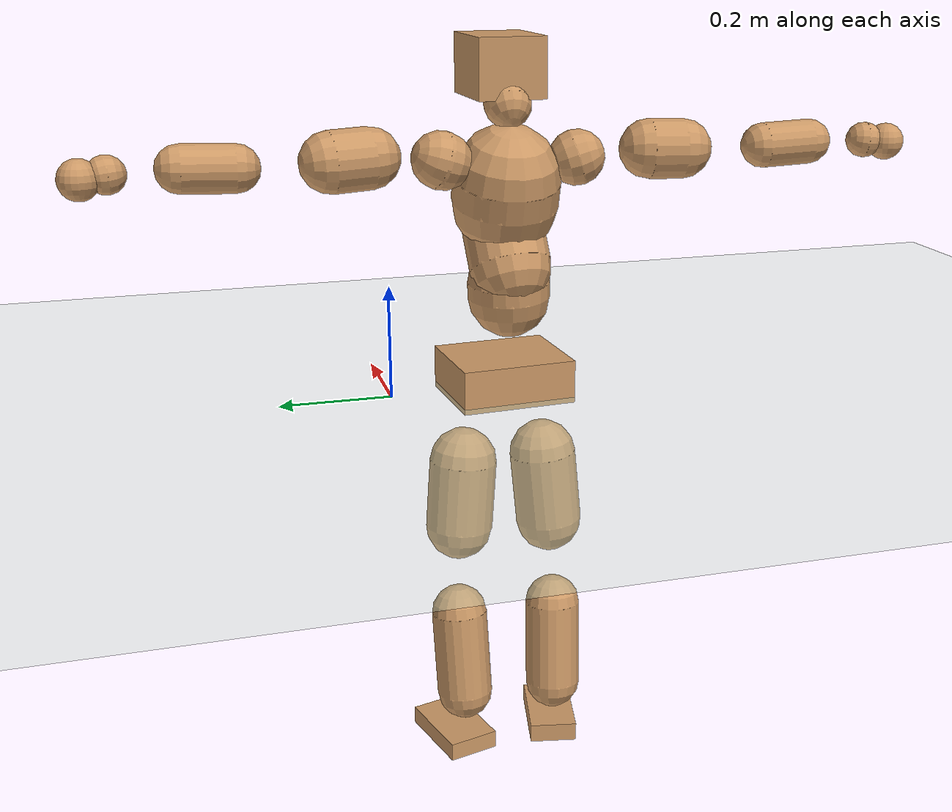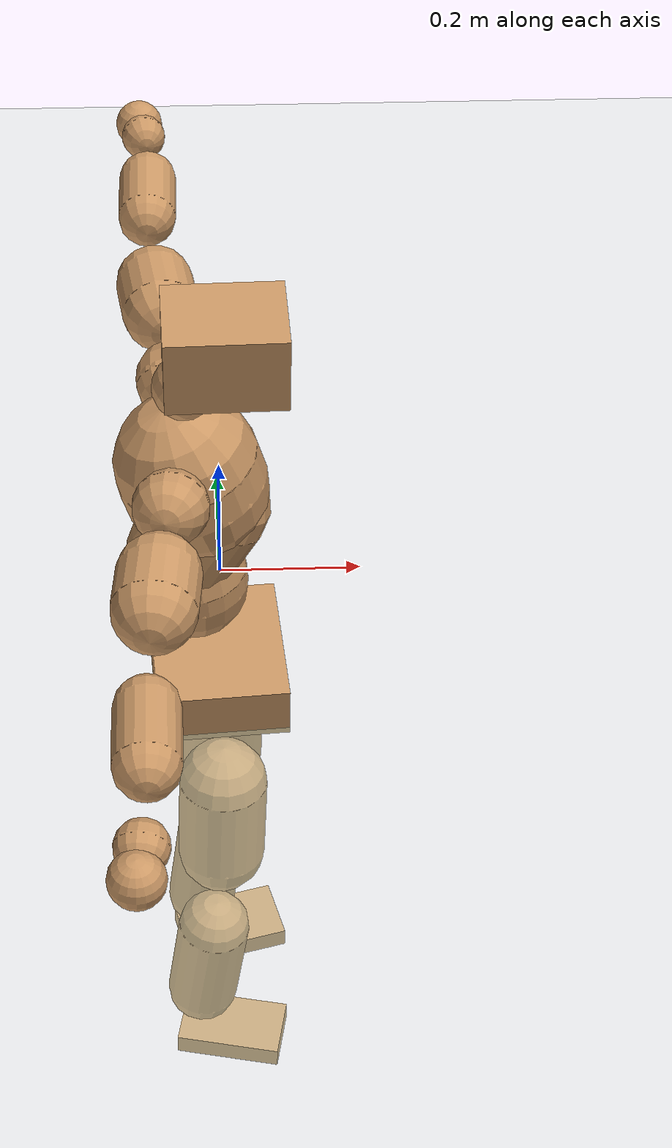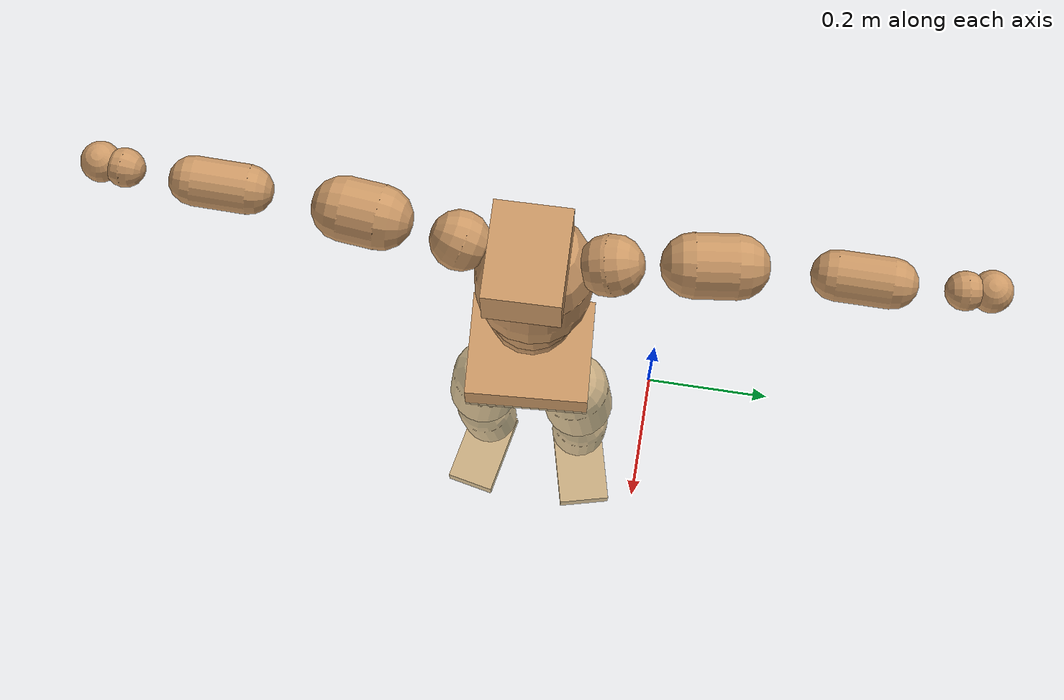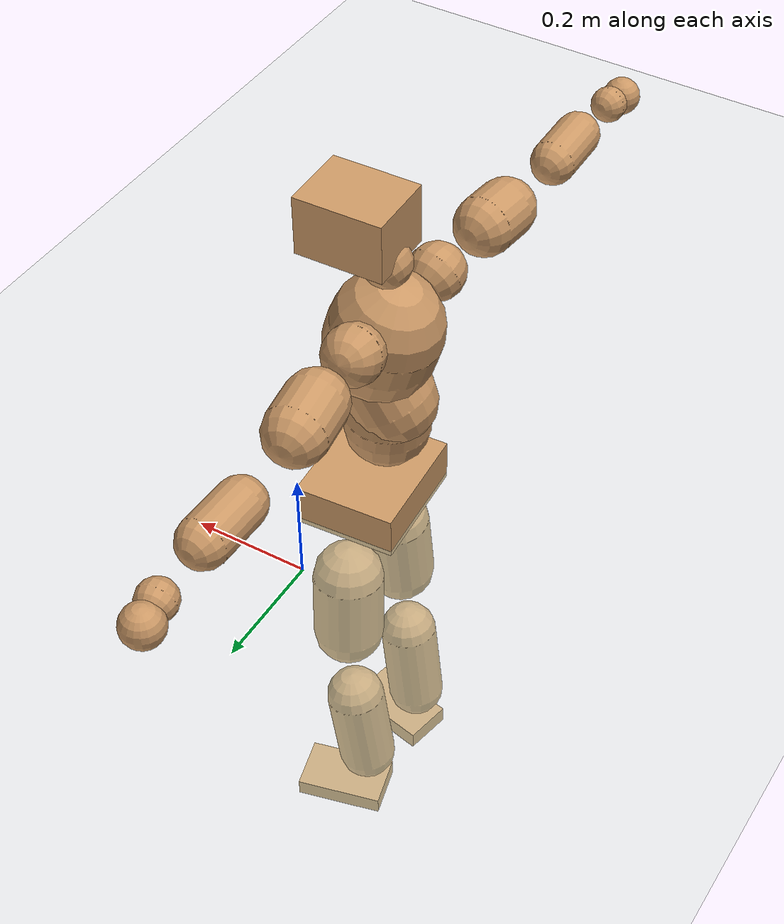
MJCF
<mujoco model="humanoid">
  <compiler coordinate="local" angle="radian"/>
  <default>
    <joint damping="0.0" armature="0.01" stiffness="0.0" limited="true"/>
    <geom conaffinity="1" condim="3" contype="7" margin="0.001" rgba="0.8 0.6 .4 1"/>
  </default>
  <asset>
    <texture type="skybox" builtin="gradient" rgb1=".4 .5 .6" rgb2="0 0 0" width="100" height="100"/>
    <texture builtin="flat" height="1278" mark="cross" markrgb="1 1 1" name="texgeom" random="0.01" rgb1="0.8 0.6 0.4" rgb2="0.8 0.6 0.4" type="cube" width="127"/>
    <texture builtin="checker" height="100" name="texplane" rgb1="0 0 0" rgb2="0.8 0.8 0.8" type="2d" width="100"/>
    <material name="MatPlane" reflectance="0.5" shininess="1" specular="1" texrepeat="60 60" texture="texplane"/>
    <material name="geom" texture="texgeom" texuniform="true"/>
  </asset>
  <worldbody>
    <light cutoff="100" diffuse="1 1 1" dir="-0 0 -1.3" directional="true" exponent="1" pos="0 0 1.3" specular=".1 .1 .1"/>
    <geom conaffinity="1" condim="3" name="floor" pos="0 0 0" rgba="0.8 0.9 0.8 1" size="100 100 .2" type="plane" material="MatPlane"/>
    <body name="Pelvis" pos="-0.0029 -0.2038 0.0381">
      <freejoint name="Pelvis"/>
      <geom type="box" contype="1" conaffinity="1" density="5359.375666" pos="-0.0043 -0.0003 -0.0111" size="0.0874 0.1028 0.0384" quat="0.9994 0.0000 0.0000 0.0344" name="Pelvis"/>
      <body name="L_Hip" pos="0.0024 0.0692 -0.0815">
        <joint name="L_Hip_x" type="hinge" pos="0 0 0" axis="1 0 0" stiffness="1600" damping="160" armature="0.02" range="-180.0000 180.0000"/>
        <joint name="L_Hip_y" type="hinge" pos="0 0 0" axis="0 1 0" stiffness="1600" damping="160" armature="0.02" range="-180.0000 180.0000"/>
        <joint name="L_Hip_z" type="hinge" pos="0 0 0" axis="0 0 1" stiffness="1600" damping="160" armature="0.02" range="-180.0000 180.0000"/>
        <geom type="capsule" contype="1" conaffinity="1" density="2040.816327" size="0.0612" fromto="-0.0022 0.0071 -0.0909 -0.0053 0.0171 -0.2189" name="L_Hip"/>
        <body name="L_Knee" pos="-0.0076 0.0242 -0.3098">
          <joint name="L_Knee_x" type="hinge" pos="0 0 0" axis="1 0 0" stiffness="1600" damping="160" armature="0.02" range="-180.0000 180.0000"/>
          <joint name="L_Knee_y" type="hinge" pos="0 0 0" axis="0 1 0" stiffness="1600" damping="160" armature="0.02" range="-180.0000 180.0000"/>
          <joint name="L_Knee_z" type="hinge" pos="0 0 0" axis="0 0 1" stiffness="1600" damping="160" armature="0.02" range="-180.0000 180.0000"/>
          <geom type="capsule" contype="1" conaffinity="1" density="1234.567901" size="0.0515" fromto="-0.0095 -0.0022 -0.0809 -0.0284 -0.0065 -0.2415" name="L_Knee"/>
          <body name="L_Ankle" pos="-0.0379 -0.0086 -0.3224">
            <joint name="L_Ankle_x" type="hinge" pos="0 0 0" axis="1 0 0" stiffness="1600" damping="160" armature="0.02" range="-180.0000 180.0000"/>
            <joint name="L_Ankle_y" type="hinge" pos="0 0 0" axis="0 1 0" stiffness="1600" damping="160" armature="0.02" range="-180.0000 180.0000"/>
            <joint name="L_Ankle_z" type="hinge" pos="0 0 0" axis="0 0 1" stiffness="1600" damping="160" armature="0.02" range="-180.0000 180.0000"/>
            <geom type="box" contype="1" conaffinity="1" density="1000.000033" pos="0.0527 0.0135 -0.0243" size="0.0787 0.0475 0.0169" quat="0.9921 0.0000 0.0000 0.1251" name="L_Ankle"/>
            <body name="L_Toe" pos="0.1053 0.027 -0.0487">
              <joint name="L_Toe_x" type="hinge" pos="0 0 0" axis="1 0 0" stiffness="1000" damping="100" armature="0.02" range="-180.0000 180.0000"/>
              <joint name="L_Toe_y" type="hinge" pos="0 0 0" axis="0 1 0" stiffness="1000" damping="100" armature="0.02" range="-180.0000 180.0000"/>
              <joint name="L_Toe_z" type="hinge" pos="0 0 0" axis="0 0 1" stiffness="1000" damping="100" armature="0.02" range="-180.0000 180.0000"/>
              <geom type="box" contype="1" conaffinity="1" density="8294357.445728" pos="0.0000 0.0000 0.0255" size="0.0009 0.0023 0.0009" quat="0.9913 0.0000 0.0000 0.1315" name="L_Toe"/>
            </body>
          </body>
        </body>
      </body>
      <body name="R_Hip" pos="0.0032 -0.0678 -0.0811">
        <joint name="R_Hip_x" type="hinge" pos="0 0 0" axis="1 0 0" stiffness="1600" damping="160" armature="0.02" range="-180.0000 180.0000"/>
        <joint name="R_Hip_y" type="hinge" pos="0 0 0" axis="0 1 0" stiffness="1600" damping="160" armature="0.02" range="-180.0000 180.0000"/>
        <joint name="R_Hip_z" type="hinge" pos="0 0 0" axis="0 0 1" stiffness="1600" damping="160" armature="0.02" range="-180.0000 180.0000"/>
        <geom type="capsule" contype="1" conaffinity="1" density="2040.816327" size="0.0608" fromto="-0.0027 -0.0079 -0.0904 -0.0068 -0.0196 -0.2245" name="R_Hip"/>
        <body name="R_Knee" pos="-0.0095 -0.0275 -0.3148">
          <joint name="R_Knee_x" type="hinge" pos="0 0 0" axis="1 0 0" stiffness="1600" damping="160" armature="0.02" range="-180.0000 180.0000"/>
          <joint name="R_Knee_y" type="hinge" pos="0 0 0" axis="0 1 0" stiffness="1600" damping="160" armature="0.02" range="-180.0000 180.0000"/>
          <joint name="R_Knee_z" type="hinge" pos="0 0 0" axis="0 0 1" stiffness="1600" damping="160" armature="0.02" range="-180.0000 180.0000"/>
          <geom type="capsule" contype="1" conaffinity="1" density="1234.567901" size="0.0516" fromto="-0.0096 0.0023 -0.0810 -0.0287 0.0068 -0.2412" name="R_Knee"/>
          <body name="R_Ankle" pos="-0.0384 0.009 -0.3222">
            <joint name="R_Ankle_x" type="hinge" pos="0 0 0" axis="1 0 0" stiffness="1600" damping="160" armature="0.02" range="-180.0000 180.0000"/>
            <joint name="R_Ankle_y" type="hinge" pos="0 0 0" axis="0 1 0" stiffness="1600" damping="160" armature="0.02" range="-180.0000 180.0000"/>
            <joint name="R_Ankle_z" type="hinge" pos="0 0 0" axis="0 0 1" stiffness="1600" damping="160" armature="0.02" range="-180.0000 180.0000"/>
            <geom type="box" contype="1" conaffinity="1" density="999.999965" pos="0.0541 -0.0109 -0.0195" size="0.0775 0.0441 0.0176" quat="0.9950 0.0000 0.0000 -0.0995" name="R_Ankle"/>
            <body name="R_Toe" pos="0.1082 -0.0219 -0.0391">
              <joint name="R_Toe_x" type="hinge" pos="0 0 0" axis="1 0 0" stiffness="1000" damping="100" armature="0.02" range="-180.0000 180.0000"/>
              <joint name="R_Toe_y" type="hinge" pos="0 0 0" axis="0 1 0" stiffness="1000" damping="100" armature="0.02" range="-180.0000 180.0000"/>
              <joint name="R_Toe_z" type="hinge" pos="0 0 0" axis="0 0 1" stiffness="1000" damping="100" armature="0.02" range="-180.0000 180.0000"/>
              <geom type="box" contype="1" conaffinity="1" density="8342481.272505" pos="0.0000 0.0000 0.0217" size="0.0008 0.0022 0.001" quat="0.9960 0.0000 0.0000 -0.0891" name="R_Toe"/>
            </body>
          </body>
        </body>
      </body>
      <body name="Torso" pos="-0.0312 -0.0031 0.0959">
        <joint name="Torso_x" type="hinge" pos="0 0 0" axis="1 0 0" stiffness="2000" damping="200" armature="0.02" range="-180.0000 180.0000"/>
        <joint name="Torso_y" type="hinge" pos="0 0 0" axis="0 1 0" stiffness="2000" damping="200" armature="0.02" range="-180.0000 180.0000"/>
        <joint name="Torso_z" type="hinge" pos="0 0 0" axis="0 0 1" stiffness="2000" damping="200" armature="0.02" range="-180.0000 180.0000"/>
        <geom type="capsule" contype="1" conaffinity="1" density="2040.816327" size="0.0723" fromto="-0.0052 0.0027 0.0721 -0.0033 0.0017 0.0457" name="Torso"/>
        <body name="Spine" pos="-0.0085 0.0043 0.1178">
          <joint name="Spine_x" type="hinge" pos="0 0 0" axis="1 0 0" stiffness="2000" damping="200" armature="0.02" range="-180.0000 180.0000"/>
          <joint name="Spine_y" type="hinge" pos="0 0 0" axis="0 1 0" stiffness="2000" damping="200" armature="0.02" range="-180.0000 180.0000"/>
          <joint name="Spine_z" type="hinge" pos="0 0 0" axis="0 0 1" stiffness="2000" damping="200" armature="0.02" range="-180.0000 180.0000"/>
          <geom type="capsule" contype="1" conaffinity="1" density="2040.816327" size="0.0715" fromto="0.0358 0.0035 0.0617 -0.0093 -0.0009 -0.0161" name="Spine"/>
          <body name="Chest" pos="0.0265 0.0026 0.0457">
            <joint name="Chest_x" type="hinge" pos="0 0 0" axis="1 0 0" stiffness="2000" damping="200" armature="0.02" range="-180.0000 180.0000"/>
            <joint name="Chest_y" type="hinge" pos="0 0 0" axis="0 1 0" stiffness="2000" damping="200" armature="0.02" range="-180.0000 180.0000"/>
            <joint name="Chest_z" type="hinge" pos="0 0 0" axis="0 0 1" stiffness="2000" damping="200" armature="0.02" range="-180.0000 180.0000"/>
            <geom type="capsule" contype="1" conaffinity="1" density="2040.816327" size="0.0925" fromto="-0.0261 -0.0009 0.0887 -0.0137 -0.0005 0.0467" name="Chest"/>
            <body name="Neck" pos="-0.045 -0.0026 0.1882">
              <joint name="Neck_x" type="hinge" pos="0 0 0" axis="1 0 0" stiffness="1000" damping="100" armature="0.02" range="-180.0000 180.0000"/>
              <joint name="Neck_y" type="hinge" pos="0 0 0" axis="0 1 0" stiffness="1000" damping="100" armature="0.02" range="-180.0000 180.0000"/>
              <joint name="Neck_z" type="hinge" pos="0 0 0" axis="0 0 1" stiffness="1000" damping="100" armature="0.02" range="-180.0000 180.0000"/>
              <geom type="capsule" contype="1" conaffinity="1" density="1000" size="0.0406" fromto="0.0258 -0.0004 0.0313 0.0189 -0.0003 0.0230" name="Neck"/>
              <body name="Head" pos="0.0447 -0.0008 0.0543">
                <joint name="Head_x" type="hinge" pos="0 0 0" axis="1 0 0" stiffness="1000" damping="100" armature="0.02" range="-180.0000 180.0000"/>
                <joint name="Head_y" type="hinge" pos="0 0 0" axis="0 1 0" stiffness="1000" damping="100" armature="0.02" range="-180.0000 180.0000"/>
                <joint name="Head_z" type="hinge" pos="0 0 0" axis="0 0 1" stiffness="1000" damping="100" armature="0.02" range="-180.0000 180.0000"/>
                <geom type="box" contype="1" conaffinity="1" density="2249.999792" pos="0.0233 0.0006 0.0282" size="0.0748 0.059 0.051" quat="0.9999 0.0000 0.0000 0.0131" name="Head"/>
              </body>
            </body>
            <body name="L_Thorax" pos="-0.0351 0.0725 0.1101">
              <joint name="L_Thorax_x" type="hinge" pos="0 0 0" axis="1 0 0" stiffness="1000" damping="100" armature="0.02" range="-180.0000 180.0000"/>
              <joint name="L_Thorax_y" type="hinge" pos="0 0 0" axis="0 1 0" stiffness="1000" damping="100" armature="0.02" range="-180.0000 180.0000"/>
              <joint name="L_Thorax_z" type="hinge" pos="0 0 0" axis="0 0 1" stiffness="1000" damping="100" armature="0.02" range="-180.0000 180.0000"/>
              <geom type="capsule" contype="1" conaffinity="1" density="1000" size="0.0488" fromto="-0.0049 0.0458 0.0160 -0.0042 0.0396 0.0139" name="L_Thorax"/>
              <body name="L_Shoulder" pos="-0.0091 0.0855 0.0299">
                <joint name="L_Shoulder_x" type="hinge" pos="0 0 0" axis="1 0 0" stiffness="1000" damping="100" armature="0.02" range="-720.0000 720.0000"/>
                <joint name="L_Shoulder_y" type="hinge" pos="0 0 0" axis="0 1 0" stiffness="1000" damping="100" armature="0.02" range="-720.0000 720.0000"/>
                <joint name="L_Shoulder_z" type="hinge" pos="0 0 0" axis="0 0 1" stiffness="1000" damping="100" armature="0.02" range="-720.0000 720.0000"/>
                <geom type="capsule" contype="1" conaffinity="1" density="1000" size="0.0511" fromto="-0.0107 0.0803 -0.0033 -0.0195 0.1461 -0.0059" name="L_Shoulder"/>
                <body name="L_Elbow" pos="-0.0303 0.2264 -0.0092">
                  <joint name="L_Elbow_x" type="hinge" pos="0 0 0" axis="1 0 0" stiffness="1000" damping="100" armature="0.02" range="-720.0000 720.0000"/>
                  <joint name="L_Elbow_y" type="hinge" pos="0 0 0" axis="0 1 0" stiffness="1000" damping="100" armature="0.02" range="-720.0000 720.0000"/>
                  <joint name="L_Elbow_z" type="hinge" pos="0 0 0" axis="0 0 1" stiffness="1000" damping="100" armature="0.02" range="-720.0000 720.0000"/>
                  <geom type="capsule" contype="1" conaffinity="1" density="1000" size="0.0394" fromto="0.0005 0.0693 0.0022 0.0011 0.1550 0.0050" name="L_Elbow"/>
                  <body name="L_Wrist" pos="0.0016 0.2244 0.0072">
                    <joint name="L_Wrist_x" type="hinge" pos="0 0 0" axis="1 0 0" stiffness="600" damping="60" armature="0.02" range="-180.0000 180.0000"/>
                    <joint name="L_Wrist_y" type="hinge" pos="0 0 0" axis="0 1 0" stiffness="600" damping="60" armature="0.02" range="-180.0000 180.0000"/>
                    <joint name="L_Wrist_z" type="hinge" pos="0 0 0" axis="0 0 1" stiffness="600" damping="60" armature="0.02" range="-180.0000 180.0000"/>
                    <geom type="capsule" contype="1" conaffinity="1" density="1000" size="0.0307" fromto="-0.0065 0.0396 -0.0048 -0.0068 0.0415 -0.0050" name="L_Wrist"/>
                    <body name="L_Hand" pos="-0.0133 0.0811 -0.0098">
                      <joint name="L_Hand_x" type="hinge" pos="0 0 0" axis="1 0 0" stiffness="600" damping="60" armature="0.02" range="-180.0000 180.0000"/>
                      <joint name="L_Hand_y" type="hinge" pos="0 0 0" axis="0 1 0" stiffness="600" damping="60" armature="0.02" range="-180.0000 180.0000"/>
                      <joint name="L_Hand_z" type="hinge" pos="0 0 0" axis="0 0 1" stiffness="600" damping="60" armature="0.02" range="-180.0000 180.0000"/>
                      <geom type="sphere" contype="1" conaffinity="1" density="1000" size="0.0329" pos="0.0000 0.0000 0.0000" name="L_Hand"/>
                    </body>
                  </body>
                </body>
              </body>
            </body>
            <body name="R_Thorax" pos="-0.0393 -0.0739 0.1082">
              <joint name="R_Thorax_x" type="hinge" pos="0 0 0" axis="1 0 0" stiffness="1000" damping="100" armature="0.02" range="-180.0000 180.0000"/>
              <joint name="R_Thorax_y" type="hinge" pos="0 0 0" axis="0 1 0" stiffness="1000" damping="100" armature="0.02" range="-180.0000 180.0000"/>
              <joint name="R_Thorax_z" type="hinge" pos="0 0 0" axis="0 0 1" stiffness="1000" damping="100" armature="0.02" range="-180.0000 180.0000"/>
              <geom type="capsule" contype="1" conaffinity="1" density="1000" size="0.0475" fromto="-0.0058 -0.0434 0.0129 -0.0061 -0.0453 0.0135" name="R_Thorax"/>
              <body name="R_Shoulder" pos="-0.0119 -0.0886 0.0264">
                <joint name="R_Shoulder_x" type="hinge" pos="0 0 0" axis="1 0 0" stiffness="1000" damping="100" armature="0.02" range="-720.0000 720.0000"/>
                <joint name="R_Shoulder_y" type="hinge" pos="0 0 0" axis="0 1 0" stiffness="1000" damping="100" armature="0.02" range="-720.0000 720.0000"/>
                <joint name="R_Shoulder_z" type="hinge" pos="0 0 0" axis="0 0 1" stiffness="1000" damping="100" armature="0.02" range="-720.0000 720.0000"/>
                <geom type="capsule" contype="1" conaffinity="1" density="1000" size="0.0512" fromto="-0.0080 -0.0808 -0.0019 -0.0137 -0.1385 -0.0032" name="R_Shoulder"/>
                <body name="R_Elbow" pos="-0.0217 -0.2192 -0.0051">
                  <joint name="R_Elbow_x" type="hinge" pos="0 0 0" axis="1 0 0" stiffness="1000" damping="100" armature="0.02" range="-720.0000 720.0000"/>
                  <joint name="R_Elbow_y" type="hinge" pos="0 0 0" axis="0 1 0" stiffness="1000" damping="100" armature="0.02" range="-720.0000 720.0000"/>
                  <joint name="R_Elbow_z" type="hinge" pos="0 0 0" axis="0 0 1" stiffness="1000" damping="100" armature="0.02" range="-720.0000 720.0000"/>
                  <geom type="capsule" contype="1" conaffinity="1" density="1000" size="0.0387" fromto="0.0001 -0.0686 0.0025 0.0002 -0.1542 0.0057" name="R_Elbow"/>
                  <body name="R_Wrist" pos="0.0003 -0.2228 0.0082">
                    <joint name="R_Wrist_x" type="hinge" pos="0 0 0" axis="1 0 0" stiffness="600" damping="60" armature="0.02" range="-180.0000 180.0000"/>
                    <joint name="R_Wrist_y" type="hinge" pos="0 0 0" axis="0 1 0" stiffness="600" damping="60" armature="0.02" range="-180.0000 180.0000"/>
                    <joint name="R_Wrist_z" type="hinge" pos="0 0 0" axis="0 0 1" stiffness="600" damping="60" armature="0.02" range="-180.0000 180.0000"/>
                    <geom type="capsule" contype="1" conaffinity="1" density="1000" size="0.0306" fromto="-0.0050 -0.0384 -0.0034 -0.0052 -0.0403 -0.0036" name="R_Wrist"/>
                    <body name="R_Hand" pos="-0.0102 -0.0787 -0.0071">
                      <joint name="R_Hand_x" type="hinge" pos="0 0 0" axis="1 0 0" stiffness="600" damping="60" armature="0.02" range="-180.0000 180.0000"/>
                      <joint name="R_Hand_y" type="hinge" pos="0 0 0" axis="0 1 0" stiffness="600" damping="60" armature="0.02" range="-180.0000 180.0000"/>
                      <joint name="R_Hand_z" type="hinge" pos="0 0 0" axis="0 0 1" stiffness="600" damping="60" armature="0.02" range="-180.0000 180.0000"/>
                      <geom type="sphere" contype="1" conaffinity="1" density="1000" size="0.0319" pos="0.0000 0.0000 0.0000" name="R_Hand"/>
                    </body>
                  </body>
                </body>
              </body>
            </body>
          </body>
        </body>
      </body>
    </body>
  </worldbody>
  <actuator>
    <motor name="L_Hip_x" joint="L_Hip_x" gear="500"/>
    <motor name="L_Hip_y" joint="L_Hip_y" gear="500"/>
    <motor name="L_Hip_z" joint="L_Hip_z" gear="500"/>
    <motor name="L_Knee_x" joint="L_Knee_x" gear="500"/>
    <motor name="L_Knee_y" joint="L_Knee_y" gear="500"/>
    <motor name="L_Knee_z" joint="L_Knee_z" gear="500"/>
    <motor name="L_Ankle_x" joint="L_Ankle_x" gear="500"/>
    <motor name="L_Ankle_y" joint="L_Ankle_y" gear="500"/>
    <motor name="L_Ankle_z" joint="L_Ankle_z" gear="500"/>
    <motor name="L_Toe_x" joint="L_Toe_x" gear="500"/>
    <motor name="L_Toe_y" joint="L_Toe_y" gear="500"/>
    <motor name="L_Toe_z" joint="L_Toe_z" gear="500"/>
    <motor name="R_Hip_x" joint="R_Hip_x" gear="500"/>
    <motor name="R_Hip_y" joint="R_Hip_y" gear="500"/>
    <motor name="R_Hip_z" joint="R_Hip_z" gear="500"/>
    <motor name="R_Knee_x" joint="R_Knee_x" gear="500"/>
    <motor name="R_Knee_y" joint="R_Knee_y" gear="500"/>
    <motor name="R_Knee_z" joint="R_Knee_z" gear="500"/>
    <motor name="R_Ankle_x" joint="R_Ankle_x" gear="500"/>
    <motor name="R_Ankle_y" joint="R_Ankle_y" gear="500"/>
    <motor name="R_Ankle_z" joint="R_Ankle_z" gear="500"/>
    <motor name="R_Toe_x" joint="R_Toe_x" gear="500"/>
    <motor name="R_Toe_y" joint="R_Toe_y" gear="500"/>
    <motor name="R_Toe_z" joint="R_Toe_z" gear="500"/>
    <motor name="Torso_x" joint="Torso_x" gear="500"/>
    <motor name="Torso_y" joint="Torso_y" gear="500"/>
    <motor name="Torso_z" joint="Torso_z" gear="500"/>
    <motor name="Spine_x" joint="Spine_x" gear="500"/>
    <motor name="Spine_y" joint="Spine_y" gear="500"/>
    <motor name="Spine_z" joint="Spine_z" gear="500"/>
    <motor name="Chest_x" joint="Chest_x" gear="500"/>
    <motor name="Chest_y" joint="Chest_y" gear="500"/>
    <motor name="Chest_z" joint="Chest_z" gear="500"/>
    <motor name="Neck_x" joint="Neck_x" gear="500"/>
    <motor name="Neck_y" joint="Neck_y" gear="500"/>
    <motor name="Neck_z" joint="Neck_z" gear="500"/>
    <motor name="Head_x" joint="Head_x" gear="500"/>
    <motor name="Head_y" joint="Head_y" gear="500"/>
    <motor name="Head_z" joint="Head_z" gear="500"/>
    <motor name="L_Thorax_x" joint="L_Thorax_x" gear="500"/>
    <motor name="L_Thorax_y" joint="L_Thorax_y" gear="500"/>
    <motor name="L_Thorax_z" joint="L_Thorax_z" gear="500"/>
    <motor name="L_Shoulder_x" joint="L_Shoulder_x" gear="500"/>
    <motor name="L_Shoulder_y" joint="L_Shoulder_y" gear="500"/>
    <motor name="L_Shoulder_z" joint="L_Shoulder_z" gear="500"/>
    <motor name="L_Elbow_x" joint="L_Elbow_x" gear="500"/>
    <motor name="L_Elbow_y" joint="L_Elbow_y" gear="500"/>
    <motor name="L_Elbow_z" joint="L_Elbow_z" gear="500"/>
    <motor name="L_Wrist_x" joint="L_Wrist_x" gear="500"/>
    <motor name="L_Wrist_y" joint="L_Wrist_y" gear="500"/>
    <motor name="L_Wrist_z" joint="L_Wrist_z" gear="500"/>
    <motor name="L_Hand_x" joint="L_Hand_x" gear="500"/>
    <motor name="L_Hand_y" joint="L_Hand_y" gear="500"/>
    <motor name="L_Hand_z" joint="L_Hand_z" gear="500"/>
    <motor name="R_Thorax_x" joint="R_Thorax_x" gear="500"/>
    <motor name="R_Thorax_y" joint="R_Thorax_y" gear="500"/>
    <motor name="R_Thorax_z" joint="R_Thorax_z" gear="500"/>
    <motor name="R_Shoulder_x" joint="R_Shoulder_x" gear="500"/>
    <motor name="R_Shoulder_y" joint="R_Shoulder_y" gear="500"/>
    <motor name="R_Shoulder_z" joint="R_Shoulder_z" gear="500"/>
    <motor name="R_Elbow_x" joint="R_Elbow_x" gear="500"/>
    <motor name="R_Elbow_y" joint="R_Elbow_y" gear="500"/>
    <motor name="R_Elbow_z" joint="R_Elbow_z" gear="500"/>
    <motor name="R_Wrist_x" joint="R_Wrist_x" gear="500"/>
    <motor name="R_Wrist_y" joint="R_Wrist_y" gear="500"/>
    <motor name="R_Wrist_z" joint="R_Wrist_z" gear="500"/>
    <motor name="R_Hand_x" joint="R_Hand_x" gear="500"/>
    <motor name="R_Hand_y" joint="R_Hand_y" gear="500"/>
    <motor name="R_Hand_z" joint="R_Hand_z" gear="500"/>
  </actuator>
  <contact>
    <exclude body1="Torso" body2="Chest"/>
    <exclude body1="Head" body2="Chest"/>
    <exclude body1="R_Knee" body2="R_Toe"/>
    <exclude body1="R_Knee" body2="L_Ankle"/>
    <exclude body1="R_Knee" body2="L_Toe"/>
    <exclude body1="L_Knee" body2="L_Toe"/>
    <exclude body1="L_Knee" body2="R_Ankle"/>
    <exclude body1="L_Knee" body2="R_Toe"/>
    <exclude body1="L_Shoulder" body2="Chest"/>
    <exclude body1="R_Shoulder" body2="Chest"/>
  </contact>
  <sensor/>
  <size njmax="700" nconmax="700"/>
</mujoco>
